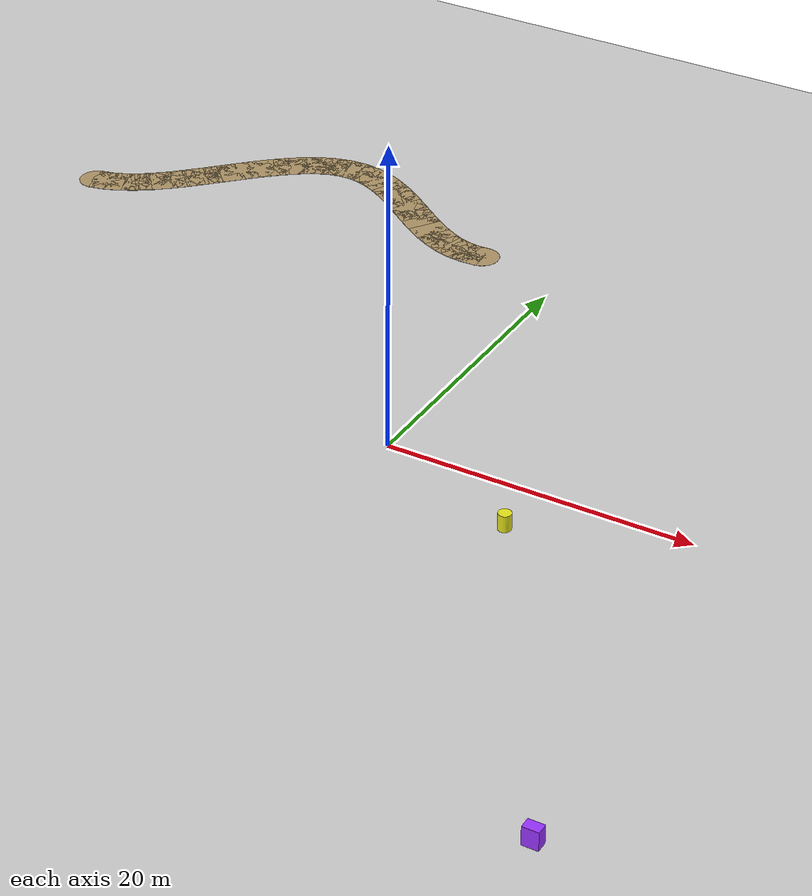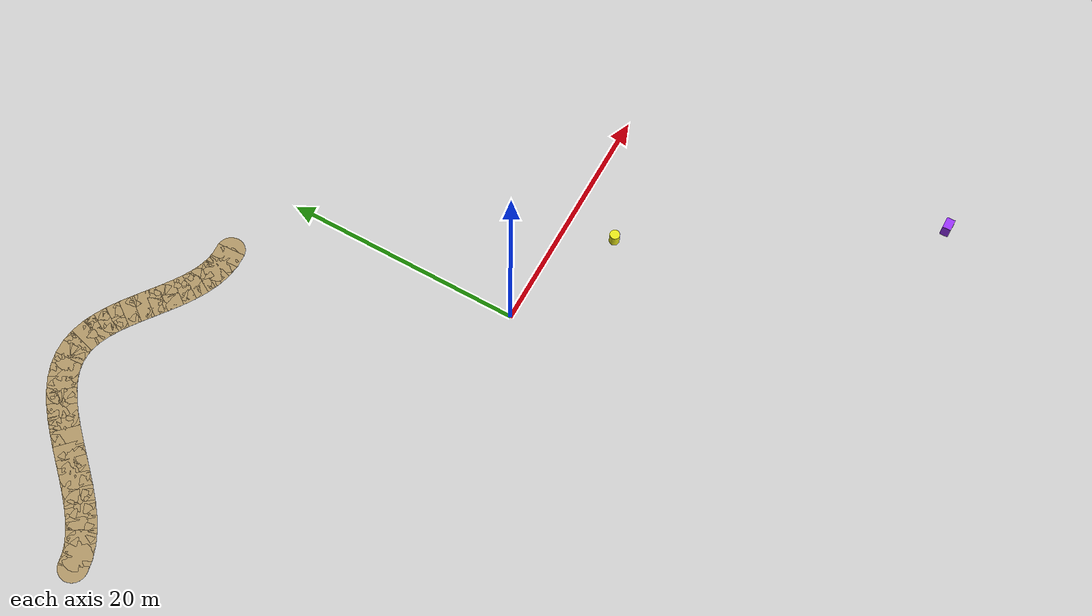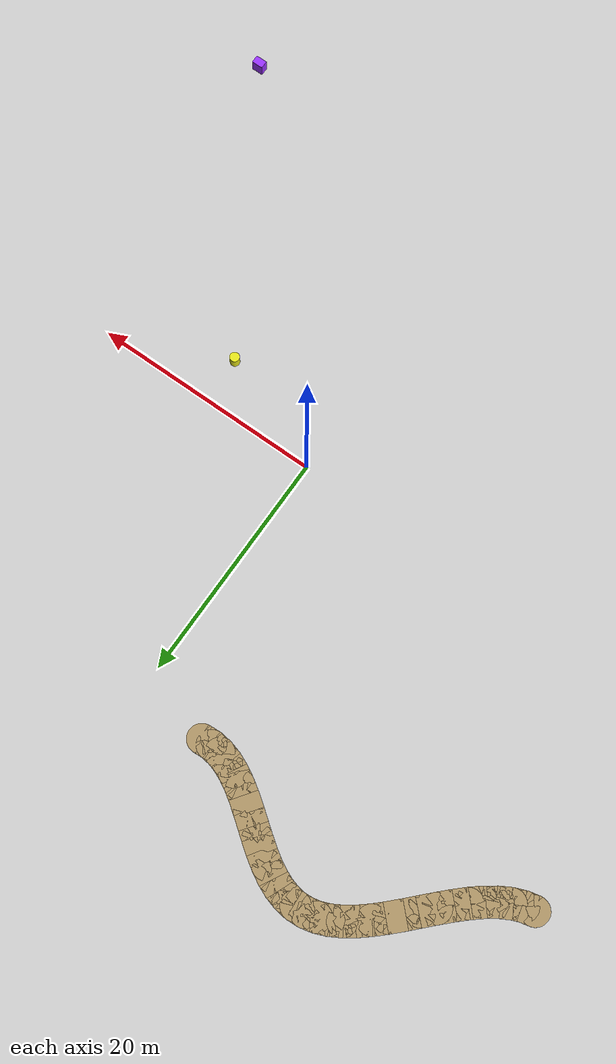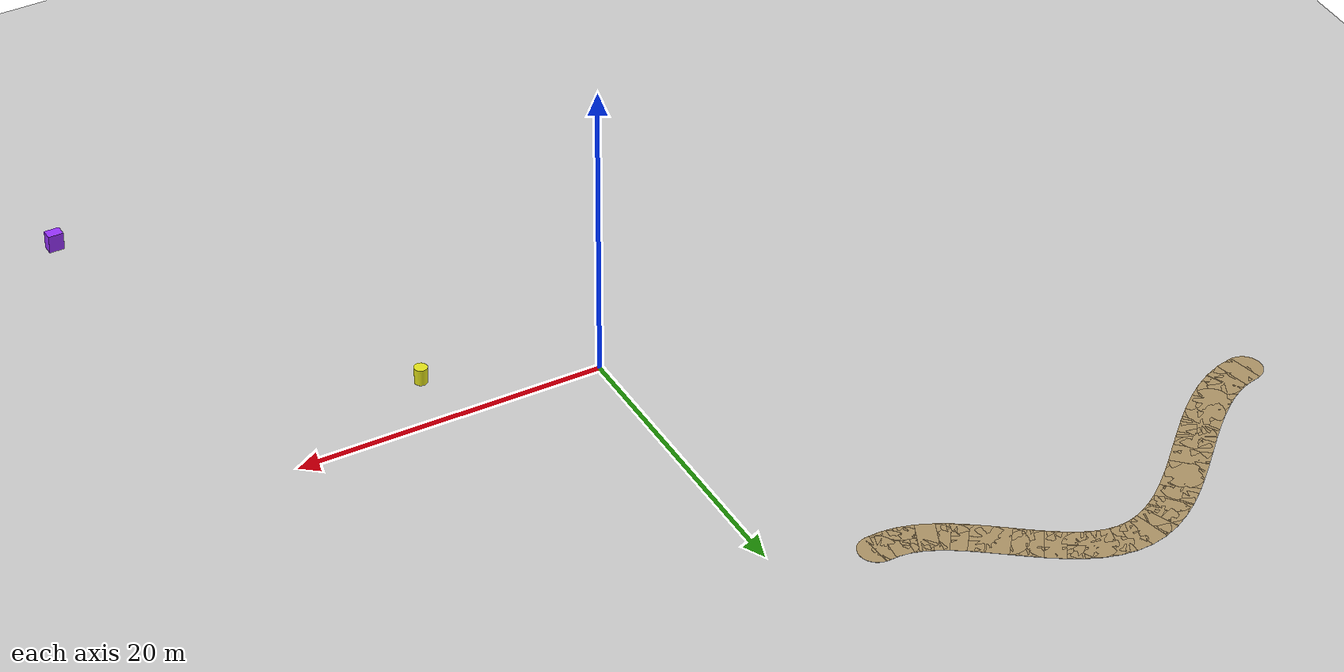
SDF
<sdf version="1.8">
 <world name="semantic_segmentation_world">
  <model name="ground_plane">
   <static>true</static>
   <link name="link">
    <collision name="collision">
     <geometry><plane><normal>0 0 1</normal><size>120 120</size></plane></geometry>
     <surface><friction><ode><mu>100</mu><mu2>50</mu2></ode></friction></surface>
    </collision>
    <visual name="visual">
     <geometry><plane><normal>0 0 1</normal><size>100 100</size></plane></geometry>
     <material>
      <ambient>0.8 0.8 0.8 1</ambient>
      <diffuse>0.8 0.8 0.8 1</diffuse>
      <specular>0.8 0.8 0.8 1</specular>
     </material>
    </visual>
   </link>
  </model>
  <model name="dynamic_obstacle_3">
   <static>true</static>
   <pose>24 -27 0.6 0 0 0</pose>
   <link name="body">
    <inertial><mass>1</mass><inertia><ixx>0.12</ixx><iyy>0.12</iyy><izz>0.12</izz></inertia></inertial>
    <velocity_decay><linear>0.4</linear><angular>0.8</angular></velocity_decay>
    <collision name="collision">
     <geometry><box><size>1.0 0.7 1.2</size></box></geometry>
     <surface><friction><ode><mu>0.2</mu><mu2>0.2</mu2></ode></friction></surface>
    </collision>
    <visual name="visual">
     <geometry><box><size>1.0 0.7 1.2</size></box></geometry>
     <material><ambient>0.6 0.2 1 1</ambient><diffuse>0.6 0.2 1 1</diffuse></material>
    </visual>
   </link>
   <plugin filename="ignition-gazebo-label-system" name="ignition::gazebo::systems::Label">
    <label>6</label>
   </plugin>
   <plugin filename="libssmi_periodic_motion_system.so" name="semantic_segmentation_husky::PeriodicMotionSystem">
    <offset>10 10 0</offset>
    <period>45</period>
    <phase>11.25</phase>
   </plugin>
  </model>
  <model name="dynamic_obstacle_8">
   <static>true</static>
   <pose>10 -4 0.55 0 0 -1.5708</pose>
   <link name="body">
    <inertial><mass>1</mass><inertia><ixx>0.1</ixx><iyy>0.1</iyy><izz>0.1</izz></inertia></inertial>
    <velocity_decay><linear>0.4</linear><angular>0.8</angular></velocity_decay>
    <collision name="collision">
     <geometry><cylinder><radius>0.42</radius><length>1.1</length></cylinder></geometry>
     <surface><friction><ode><mu>0.2</mu><mu2>0.2</mu2></ode></friction></surface>
    </collision>
    <visual name="visual">
     <geometry><cylinder><radius>0.42</radius><length>1.1</length></cylinder></geometry>
     <material><ambient>0.9 0.9 0.1 1</ambient><diffuse>0.9 0.9 0.1 1</diffuse></material>
    </visual>
   </link>
   <plugin filename="ignition-gazebo-label-system" name="ignition::gazebo::systems::Label">
    <label>5</label>
   </plugin>
   <plugin filename="libssmi_periodic_motion_system.so" name="semantic_segmentation_husky::PeriodicMotionSystem">
    <offset>0 -12 0</offset>
    <period>36</period>
    <phase>9</phase>
   </plugin>
  </model>
  <model name="curved_park_path">
   <static>true</static>
   <link name="path_visuals">
    <visual name="path_segment_00">
     <pose>-33.5625 18.6009 0.022 0 0 0.2267292</pose>
     <geometry><box><size>1.1780 2.400 0.012</size></box></geometry>
     <material>
      <ambient>0.46 0.39 0.27 1</ambient>
      <diffuse>0.68 0.58 0.40 1</diffuse>
      <specular>0.01 0.01 0.01 1</specular>
     </material>
    </visual>
    <visual name="path_segment_01">
     <pose>-32.6875 18.8782 0.022 0 0 0.3830879</pose>
     <geometry><box><size>1.2234 2.400 0.012</size></box></geometry>
     <material>
      <ambient>0.46 0.39 0.27 1</ambient>
      <diffuse>0.68 0.58 0.40 1</diffuse>
      <specular>0.01 0.01 0.01 1</specular>
     </material>
    </visual>
    <visual name="path_segment_02">
     <pose>-31.8125 19.3018 0.022 0 0 0.5145158</pose>
     <geometry><box><size>1.2851 2.400 0.012</size></box></geometry>
     <material>
      <ambient>0.46 0.39 0.27 1</ambient>
      <diffuse>0.68 0.58 0.40 1</diffuse>
      <specular>0.01 0.01 0.01 1</specular>
     </material>
    </visual>
    <visual name="path_segment_03">
     <pose>-30.9375 19.8603 0.022 0 0 0.6183181</pose>
     <geometry><box><size>1.3538 2.400 0.012</size></box></geometry>
     <material>
      <ambient>0.46 0.39 0.27 1</ambient>
      <diffuse>0.68 0.58 0.40 1</diffuse>
      <specular>0.01 0.01 0.01 1</specular>
     </material>
    </visual>
    <visual name="path_segment_04">
     <pose>-30.0625 20.5371 0.022 0 0 0.6960719</pose>
     <geometry><box><size>1.4203 2.400 0.012</size></box></geometry>
     <material>
      <ambient>0.46 0.39 0.27 1</ambient>
      <diffuse>0.68 0.58 0.40 1</diffuse>
      <specular>0.01 0.01 0.01 1</specular>
     </material>
    </visual>
    <visual name="path_segment_05">
     <pose>-29.1875 21.3110 0.022 0 0 0.7508561</pose>
     <geometry><box><size>1.4768 2.400 0.012</size></box></geometry>
     <material>
      <ambient>0.46 0.39 0.27 1</ambient>
      <diffuse>0.68 0.58 0.40 1</diffuse>
      <specular>0.01 0.01 0.01 1</specular>
     </material>
    </visual>
    <visual name="path_segment_06">
     <pose>-28.3125 22.1570 0.022 0 0 0.7856109</pose>
     <geometry><box><size>1.5177 2.400 0.012</size></box></geometry>
     <material>
      <ambient>0.46 0.39 0.27 1</ambient>
      <diffuse>0.68 0.58 0.40 1</diffuse>
      <specular>0.01 0.01 0.01 1</specular>
     </material>
    </visual>
    <visual name="path_segment_07">
     <pose>-27.4375 23.0473 0.022 0 0 0.8024500</pose>
     <geometry><box><size>1.5391 2.400 0.012</size></box></geometry>
     <material>
      <ambient>0.46 0.39 0.27 1</ambient>
      <diffuse>0.68 0.58 0.40 1</diffuse>
      <specular>0.01 0.01 0.01 1</specular>
     </material>
    </visual>
    <visual name="path_segment_08">
     <pose>-26.5625 23.9527 0.022 0 0 0.8024500</pose>
     <geometry><box><size>1.5391 2.400 0.012</size></box></geometry>
     <material>
      <ambient>0.46 0.39 0.27 1</ambient>
      <diffuse>0.68 0.58 0.40 1</diffuse>
      <specular>0.01 0.01 0.01 1</specular>
     </material>
    </visual>
    <visual name="path_segment_09">
     <pose>-25.6875 24.8430 0.022 0 0 0.7856109</pose>
     <geometry><box><size>1.5177 2.400 0.012</size></box></geometry>
     <material>
      <ambient>0.46 0.39 0.27 1</ambient>
      <diffuse>0.68 0.58 0.40 1</diffuse>
      <specular>0.01 0.01 0.01 1</specular>
     </material>
    </visual>
    <visual name="path_segment_10">
     <pose>-24.8125 25.6890 0.022 0 0 0.7508561</pose>
     <geometry><box><size>1.4768 2.400 0.012</size></box></geometry>
     <material>
      <ambient>0.46 0.39 0.27 1</ambient>
      <diffuse>0.68 0.58 0.40 1</diffuse>
      <specular>0.01 0.01 0.01 1</specular>
     </material>
    </visual>
    <visual name="path_segment_11">
     <pose>-23.9375 26.4629 0.022 0 0 0.6960719</pose>
     <geometry><box><size>1.4203 2.400 0.012</size></box></geometry>
     <material>
      <ambient>0.46 0.39 0.27 1</ambient>
      <diffuse>0.68 0.58 0.40 1</diffuse>
      <specular>0.01 0.01 0.01 1</specular>
     </material>
    </visual>
    <visual name="path_segment_12">
     <pose>-23.0625 27.1397 0.022 0 0 0.6183181</pose>
     <geometry><box><size>1.3538 2.400 0.012</size></box></geometry>
     <material>
      <ambient>0.46 0.39 0.27 1</ambient>
      <diffuse>0.68 0.58 0.40 1</diffuse>
      <specular>0.01 0.01 0.01 1</specular>
     </material>
    </visual>
    <visual name="path_segment_13">
     <pose>-22.1875 27.6982 0.022 0 0 0.5145158</pose>
     <geometry><box><size>1.2851 2.400 0.012</size></box></geometry>
     <material>
      <ambient>0.46 0.39 0.27 1</ambient>
      <diffuse>0.68 0.58 0.40 1</diffuse>
      <specular>0.01 0.01 0.01 1</specular>
     </material>
    </visual>
    <visual name="path_segment_14">
     <pose>-21.3125 28.1218 0.022 0 0 0.3830879</pose>
     <geometry><box><size>1.2234 2.400 0.012</size></box></geometry>
     <material>
      <ambient>0.46 0.39 0.27 1</ambient>
      <diffuse>0.68 0.58 0.40 1</diffuse>
      <specular>0.01 0.01 0.01 1</specular>
     </material>
    </visual>
    <visual name="path_segment_15">
     <pose>-20.4375 28.3991 0.022 0 0 0.2267292</pose>
     <geometry><box><size>1.1780 2.400 0.012</size></box></geometry>
     <material>
      <ambient>0.46 0.39 0.27 1</ambient>
      <diffuse>0.68 0.58 0.40 1</diffuse>
      <specular>0.01 0.01 0.01 1</specular>
     </material>
    </visual>
    <visual name="path_segment_16">
     <pose>-19.5625 28.5241 0.022 0 0 0.0549630</pose>
     <geometry><box><size>1.1563 2.400 0.012</size></box></geometry>
     <material>
      <ambient>0.46 0.39 0.27 1</ambient>
      <diffuse>0.68 0.58 0.40 1</diffuse>
      <specular>0.01 0.01 0.01 1</specular>
     </material>
    </visual>
    <visual name="path_segment_17">
     <pose>-18.6875 28.4968 0.022 0 0 -0.1167501</pose>
     <geometry><box><size>1.1610 2.400 0.012</size></box></geometry>
     <material>
      <ambient>0.46 0.39 0.27 1</ambient>
      <diffuse>0.68 0.58 0.40 1</diffuse>
      <specular>0.01 0.01 0.01 1</specular>
     </material>
    </visual>
    <visual name="path_segment_18">
     <pose>-17.8125 28.3232 0.022 0 0 -0.2726268</pose>
     <geometry><box><size>1.1886 2.400 0.012</size></box></geometry>
     <material>
      <ambient>0.46 0.39 0.27 1</ambient>
      <diffuse>0.68 0.58 0.40 1</diffuse>
      <specular>0.01 0.01 0.01 1</specular>
     </material>
    </visual>
    <visual name="path_segment_19">
     <pose>-16.9375 28.0147 0.022 0 0 -0.4024284</pose>
     <geometry><box><size>1.2310 2.400 0.012</size></box></geometry>
     <material>
      <ambient>0.46 0.39 0.27 1</ambient>
      <diffuse>0.68 0.58 0.40 1</diffuse>
      <specular>0.01 0.01 0.01 1</specular>
     </material>
    </visual>
    <visual name="path_segment_20">
     <pose>-16.0625 27.5879 0.022 0 0 -0.5027521</pose>
     <geometry><box><size>1.2786 2.400 0.012</size></box></geometry>
     <material>
      <ambient>0.46 0.39 0.27 1</ambient>
      <diffuse>0.68 0.58 0.40 1</diffuse>
      <specular>0.01 0.01 0.01 1</specular>
     </material>
    </visual>
    <visual name="path_segment_21">
     <pose>-15.1875 27.0640 0.022 0 0 -0.5746034</pose>
     <geometry><box><size>1.3224 2.400 0.012</size></box></geometry>
     <material>
      <ambient>0.46 0.39 0.27 1</ambient>
      <diffuse>0.68 0.58 0.40 1</diffuse>
      <specular>0.01 0.01 0.01 1</specular>
     </material>
    </visual>
    <visual name="path_segment_22">
     <pose>-14.3125 26.4680 0.022 0 0 -0.6205313</pose>
     <geometry><box><size>1.3555 2.400 0.012</size></box></geometry>
     <material>
      <ambient>0.46 0.39 0.27 1</ambient>
      <diffuse>0.68 0.58 0.40 1</diffuse>
      <specular>0.01 0.01 0.01 1</specular>
     </material>
    </visual>
    <visual name="path_segment_23">
     <pose>-13.4375 25.8277 0.022 0 0 -0.6428508</pose>
     <geometry><box><size>1.3732 2.400 0.012</size></box></geometry>
     <material>
      <ambient>0.46 0.39 0.27 1</ambient>
      <diffuse>0.68 0.58 0.40 1</diffuse>
      <specular>0.01 0.01 0.01 1</specular>
     </material>
    </visual>
    <visual name="path_segment_24">
     <pose>-12.5625 25.1723 0.022 0 0 -0.6428508</pose>
     <geometry><box><size>1.3732 2.400 0.012</size></box></geometry>
     <material>
      <ambient>0.46 0.39 0.27 1</ambient>
      <diffuse>0.68 0.58 0.40 1</diffuse>
      <specular>0.01 0.01 0.01 1</specular>
     </material>
    </visual>
    <visual name="path_segment_25">
     <pose>-11.6875 24.5320 0.022 0 0 -0.6205313</pose>
     <geometry><box><size>1.3555 2.400 0.012</size></box></geometry>
     <material>
      <ambient>0.46 0.39 0.27 1</ambient>
      <diffuse>0.68 0.58 0.40 1</diffuse>
      <specular>0.01 0.01 0.01 1</specular>
     </material>
    </visual>
    <visual name="path_segment_26">
     <pose>-10.8125 23.9360 0.022 0 0 -0.5746034</pose>
     <geometry><box><size>1.3224 2.400 0.012</size></box></geometry>
     <material>
      <ambient>0.46 0.39 0.27 1</ambient>
      <diffuse>0.68 0.58 0.40 1</diffuse>
      <specular>0.01 0.01 0.01 1</specular>
     </material>
    </visual>
    <visual name="path_segment_27">
     <pose>-9.9375 23.4121 0.022 0 0 -0.5027521</pose>
     <geometry><box><size>1.2786 2.400 0.012</size></box></geometry>
     <material>
      <ambient>0.46 0.39 0.27 1</ambient>
      <diffuse>0.68 0.58 0.40 1</diffuse>
      <specular>0.01 0.01 0.01 1</specular>
     </material>
    </visual>
    <visual name="path_segment_28">
     <pose>-9.0625 22.9853 0.022 0 0 -0.4024284</pose>
     <geometry><box><size>1.2310 2.400 0.012</size></box></geometry>
     <material>
      <ambient>0.46 0.39 0.27 1</ambient>
      <diffuse>0.68 0.58 0.40 1</diffuse>
      <specular>0.01 0.01 0.01 1</specular>
     </material>
    </visual>
    <visual name="path_segment_29">
     <pose>-8.1875 22.6768 0.022 0 0 -0.2726268</pose>
     <geometry><box><size>1.1886 2.400 0.012</size></box></geometry>
     <material>
      <ambient>0.46 0.39 0.27 1</ambient>
      <diffuse>0.68 0.58 0.40 1</diffuse>
      <specular>0.01 0.01 0.01 1</specular>
     </material>
    </visual>
    <visual name="path_segment_30">
     <pose>-7.3125 22.5032 0.022 0 0 -0.1167501</pose>
     <geometry><box><size>1.1610 2.400 0.012</size></box></geometry>
     <material>
      <ambient>0.46 0.39 0.27 1</ambient>
      <diffuse>0.68 0.58 0.40 1</diffuse>
      <specular>0.01 0.01 0.01 1</specular>
     </material>
    </visual>
    <visual name="path_segment_31">
     <pose>-6.4375 22.4759 0.022 0 0 0.0549630</pose>
     <geometry><box><size>1.1563 2.400 0.012</size></box></geometry>
     <material>
      <ambient>0.46 0.39 0.27 1</ambient>
      <diffuse>0.68 0.58 0.40 1</diffuse>
      <specular>0.01 0.01 0.01 1</specular>
     </material>
    </visual>
    <visual name="path_joint_00">
     <pose>-34.0000 18.5000 0.022 0 0 0</pose>
     <geometry><cylinder><radius>1.200</radius><length>0.012</length></cylinder></geometry>
     <material>
      <ambient>0.46 0.39 0.27 1</ambient>
      <diffuse>0.68 0.58 0.40 1</diffuse>
      <specular>0.01 0.01 0.01 1</specular>
     </material>
    </visual>
    <visual name="path_joint_01">
     <pose>-33.1250 18.7019 0.022 0 0 0</pose>
     <geometry><cylinder><radius>1.200</radius><length>0.012</length></cylinder></geometry>
     <material>
      <ambient>0.46 0.39 0.27 1</ambient>
      <diffuse>0.68 0.58 0.40 1</diffuse>
      <specular>0.01 0.01 0.01 1</specular>
     </material>
    </visual>
    <visual name="path_joint_02">
     <pose>-32.2500 19.0545 0.022 0 0 0</pose>
     <geometry><cylinder><radius>1.200</radius><length>0.012</length></cylinder></geometry>
     <material>
      <ambient>0.46 0.39 0.27 1</ambient>
      <diffuse>0.68 0.58 0.40 1</diffuse>
      <specular>0.01 0.01 0.01 1</specular>
     </material>
    </visual>
    <visual name="path_joint_03">
     <pose>-31.3750 19.5491 0.022 0 0 0</pose>
     <geometry><cylinder><radius>1.200</radius><length>0.012</length></cylinder></geometry>
     <material>
      <ambient>0.46 0.39 0.27 1</ambient>
      <diffuse>0.68 0.58 0.40 1</diffuse>
      <specular>0.01 0.01 0.01 1</specular>
     </material>
    </visual>
    <visual name="path_joint_04">
     <pose>-30.5000 20.1716 0.022 0 0 0</pose>
     <geometry><cylinder><radius>1.200</radius><length>0.012</length></cylinder></geometry>
     <material>
      <ambient>0.46 0.39 0.27 1</ambient>
      <diffuse>0.68 0.58 0.40 1</diffuse>
      <specular>0.01 0.01 0.01 1</specular>
     </material>
    </visual>
    <visual name="path_joint_05">
     <pose>-29.6250 20.9027 0.022 0 0 0</pose>
     <geometry><cylinder><radius>1.200</radius><length>0.012</length></cylinder></geometry>
     <material>
      <ambient>0.46 0.39 0.27 1</ambient>
      <diffuse>0.68 0.58 0.40 1</diffuse>
      <specular>0.01 0.01 0.01 1</specular>
     </material>
    </visual>
    <visual name="path_joint_06">
     <pose>-28.7500 21.7193 0.022 0 0 0</pose>
     <geometry><cylinder><radius>1.200</radius><length>0.012</length></cylinder></geometry>
     <material>
      <ambient>0.46 0.39 0.27 1</ambient>
      <diffuse>0.68 0.58 0.40 1</diffuse>
      <specular>0.01 0.01 0.01 1</specular>
     </material>
    </visual>
    <visual name="path_joint_07">
     <pose>-27.8750 22.5946 0.022 0 0 0</pose>
     <geometry><cylinder><radius>1.200</radius><length>0.012</length></cylinder></geometry>
     <material>
      <ambient>0.46 0.39 0.27 1</ambient>
      <diffuse>0.68 0.58 0.40 1</diffuse>
      <specular>0.01 0.01 0.01 1</specular>
     </material>
    </visual>
    <visual name="path_joint_08">
     <pose>-27.0000 23.5000 0.022 0 0 0</pose>
     <geometry><cylinder><radius>1.200</radius><length>0.012</length></cylinder></geometry>
     <material>
      <ambient>0.46 0.39 0.27 1</ambient>
      <diffuse>0.68 0.58 0.40 1</diffuse>
      <specular>0.01 0.01 0.01 1</specular>
     </material>
    </visual>
    <visual name="path_joint_09">
     <pose>-26.1250 24.4054 0.022 0 0 0</pose>
     <geometry><cylinder><radius>1.200</radius><length>0.012</length></cylinder></geometry>
     <material>
      <ambient>0.46 0.39 0.27 1</ambient>
      <diffuse>0.68 0.58 0.40 1</diffuse>
      <specular>0.01 0.01 0.01 1</specular>
     </material>
    </visual>
    <visual name="path_joint_10">
     <pose>-25.2500 25.2807 0.022 0 0 0</pose>
     <geometry><cylinder><radius>1.200</radius><length>0.012</length></cylinder></geometry>
     <material>
      <ambient>0.46 0.39 0.27 1</ambient>
      <diffuse>0.68 0.58 0.40 1</diffuse>
      <specular>0.01 0.01 0.01 1</specular>
     </material>
    </visual>
    <visual name="path_joint_11">
     <pose>-24.3750 26.0973 0.022 0 0 0</pose>
     <geometry><cylinder><radius>1.200</radius><length>0.012</length></cylinder></geometry>
     <material>
      <ambient>0.46 0.39 0.27 1</ambient>
      <diffuse>0.68 0.58 0.40 1</diffuse>
      <specular>0.01 0.01 0.01 1</specular>
     </material>
    </visual>
    <visual name="path_joint_12">
     <pose>-23.5000 26.8284 0.022 0 0 0</pose>
     <geometry><cylinder><radius>1.200</radius><length>0.012</length></cylinder></geometry>
     <material>
      <ambient>0.46 0.39 0.27 1</ambient>
      <diffuse>0.68 0.58 0.40 1</diffuse>
      <specular>0.01 0.01 0.01 1</specular>
     </material>
    </visual>
    <visual name="path_joint_13">
     <pose>-22.6250 27.4509 0.022 0 0 0</pose>
     <geometry><cylinder><radius>1.200</radius><length>0.012</length></cylinder></geometry>
     <material>
      <ambient>0.46 0.39 0.27 1</ambient>
      <diffuse>0.68 0.58 0.40 1</diffuse>
      <specular>0.01 0.01 0.01 1</specular>
     </material>
    </visual>
    <visual name="path_joint_14">
     <pose>-21.7500 27.9455 0.022 0 0 0</pose>
     <geometry><cylinder><radius>1.200</radius><length>0.012</length></cylinder></geometry>
     <material>
      <ambient>0.46 0.39 0.27 1</ambient>
      <diffuse>0.68 0.58 0.40 1</diffuse>
      <specular>0.01 0.01 0.01 1</specular>
     </material>
    </visual>
    <visual name="path_joint_15">
     <pose>-20.8750 28.2981 0.022 0 0 0</pose>
     <geometry><cylinder><radius>1.200</radius><length>0.012</length></cylinder></geometry>
     <material>
      <ambient>0.46 0.39 0.27 1</ambient>
      <diffuse>0.68 0.58 0.40 1</diffuse>
      <specular>0.01 0.01 0.01 1</specular>
     </material>
    </visual>
    <visual name="path_joint_16">
     <pose>-20.0000 28.5000 0.022 0 0 0</pose>
     <geometry><cylinder><radius>1.200</radius><length>0.012</length></cylinder></geometry>
     <material>
      <ambient>0.46 0.39 0.27 1</ambient>
      <diffuse>0.68 0.58 0.40 1</diffuse>
      <specular>0.01 0.01 0.01 1</specular>
     </material>
    </visual>
    <visual name="path_joint_17">
     <pose>-19.1250 28.5481 0.022 0 0 0</pose>
     <geometry><cylinder><radius>1.200</radius><length>0.012</length></cylinder></geometry>
     <material>
      <ambient>0.46 0.39 0.27 1</ambient>
      <diffuse>0.68 0.58 0.40 1</diffuse>
      <specular>0.01 0.01 0.01 1</specular>
     </material>
    </visual>
    <visual name="path_joint_18">
     <pose>-18.2500 28.4455 0.022 0 0 0</pose>
     <geometry><cylinder><radius>1.200</radius><length>0.012</length></cylinder></geometry>
     <material>
      <ambient>0.46 0.39 0.27 1</ambient>
      <diffuse>0.68 0.58 0.40 1</diffuse>
      <specular>0.01 0.01 0.01 1</specular>
     </material>
    </visual>
    <visual name="path_joint_19">
     <pose>-17.3750 28.2009 0.022 0 0 0</pose>
     <geometry><cylinder><radius>1.200</radius><length>0.012</length></cylinder></geometry>
     <material>
      <ambient>0.46 0.39 0.27 1</ambient>
      <diffuse>0.68 0.58 0.40 1</diffuse>
      <specular>0.01 0.01 0.01 1</specular>
     </material>
    </visual>
    <visual name="path_joint_20">
     <pose>-16.5000 27.8284 0.022 0 0 0</pose>
     <geometry><cylinder><radius>1.200</radius><length>0.012</length></cylinder></geometry>
     <material>
      <ambient>0.46 0.39 0.27 1</ambient>
      <diffuse>0.68 0.58 0.40 1</diffuse>
      <specular>0.01 0.01 0.01 1</specular>
     </material>
    </visual>
    <visual name="path_joint_21">
     <pose>-15.6250 27.3473 0.022 0 0 0</pose>
     <geometry><cylinder><radius>1.200</radius><length>0.012</length></cylinder></geometry>
     <material>
      <ambient>0.46 0.39 0.27 1</ambient>
      <diffuse>0.68 0.58 0.40 1</diffuse>
      <specular>0.01 0.01 0.01 1</specular>
     </material>
    </visual>
    <visual name="path_joint_22">
     <pose>-14.7500 26.7807 0.022 0 0 0</pose>
     <geometry><cylinder><radius>1.200</radius><length>0.012</length></cylinder></geometry>
     <material>
      <ambient>0.46 0.39 0.27 1</ambient>
      <diffuse>0.68 0.58 0.40 1</diffuse>
      <specular>0.01 0.01 0.01 1</specular>
     </material>
    </visual>
    <visual name="path_joint_23">
     <pose>-13.8750 26.1554 0.022 0 0 0</pose>
     <geometry><cylinder><radius>1.200</radius><length>0.012</length></cylinder></geometry>
     <material>
      <ambient>0.46 0.39 0.27 1</ambient>
      <diffuse>0.68 0.58 0.40 1</diffuse>
      <specular>0.01 0.01 0.01 1</specular>
     </material>
    </visual>
    <visual name="path_joint_24">
     <pose>-13.0000 25.5000 0.022 0 0 0</pose>
     <geometry><cylinder><radius>1.200</radius><length>0.012</length></cylinder></geometry>
     <material>
      <ambient>0.46 0.39 0.27 1</ambient>
      <diffuse>0.68 0.58 0.40 1</diffuse>
      <specular>0.01 0.01 0.01 1</specular>
     </material>
    </visual>
    <visual name="path_joint_25">
     <pose>-12.1250 24.8446 0.022 0 0 0</pose>
     <geometry><cylinder><radius>1.200</radius><length>0.012</length></cylinder></geometry>
     <material>
      <ambient>0.46 0.39 0.27 1</ambient>
      <diffuse>0.68 0.58 0.40 1</diffuse>
      <specular>0.01 0.01 0.01 1</specular>
     </material>
    </visual>
    <visual name="path_joint_26">
     <pose>-11.2500 24.2193 0.022 0 0 0</pose>
     <geometry><cylinder><radius>1.200</radius><length>0.012</length></cylinder></geometry>
     <material>
      <ambient>0.46 0.39 0.27 1</ambient>
      <diffuse>0.68 0.58 0.40 1</diffuse>
      <specular>0.01 0.01 0.01 1</specular>
     </material>
    </visual>
    <visual name="path_joint_27">
     <pose>-10.3750 23.6527 0.022 0 0 0</pose>
     <geometry><cylinder><radius>1.200</radius><length>0.012</length></cylinder></geometry>
     <material>
      <ambient>0.46 0.39 0.27 1</ambient>
      <diffuse>0.68 0.58 0.40 1</diffuse>
      <specular>0.01 0.01 0.01 1</specular>
     </material>
    </visual>
    <visual name="path_joint_28">
     <pose>-9.5000 23.1716 0.022 0 0 0</pose>
     <geometry><cylinder><radius>1.200</radius><length>0.012</length></cylinder></geometry>
     <material>
      <ambient>0.46 0.39 0.27 1</ambient>
      <diffuse>0.68 0.58 0.40 1</diffuse>
      <specular>0.01 0.01 0.01 1</specular>
     </material>
    </visual>
    <visual name="path_joint_29">
     <pose>-8.6250 22.7991 0.022 0 0 0</pose>
     <geometry><cylinder><radius>1.200</radius><length>0.012</length></cylinder></geometry>
     <material>
      <ambient>0.46 0.39 0.27 1</ambient>
      <diffuse>0.68 0.58 0.40 1</diffuse>
      <specular>0.01 0.01 0.01 1</specular>
     </material>
    </visual>
    <visual name="path_joint_30">
     <pose>-7.7500 22.5545 0.022 0 0 0</pose>
     <geometry><cylinder><radius>1.200</radius><length>0.012</length></cylinder></geometry>
     <material>
      <ambient>0.46 0.39 0.27 1</ambient>
      <diffuse>0.68 0.58 0.40 1</diffuse>
      <specular>0.01 0.01 0.01 1</specular>
     </material>
    </visual>
    <visual name="path_joint_31">
     <pose>-6.8750 22.4519 0.022 0 0 0</pose>
     <geometry><cylinder><radius>1.200</radius><length>0.012</length></cylinder></geometry>
     <material>
      <ambient>0.46 0.39 0.27 1</ambient>
      <diffuse>0.68 0.58 0.40 1</diffuse>
      <specular>0.01 0.01 0.01 1</specular>
     </material>
    </visual>
    <visual name="path_joint_32">
     <pose>-6.0000 22.5000 0.022 0 0 0</pose>
     <geometry><cylinder><radius>1.200</radius><length>0.012</length></cylinder></geometry>
     <material>
      <ambient>0.46 0.39 0.27 1</ambient>
      <diffuse>0.68 0.58 0.40 1</diffuse>
      <specular>0.01 0.01 0.01 1</specular>
     </material>
    </visual>
   </link>
   <plugin filename="ignition-gazebo-label-system" name="ignition::gazebo::systems::Label">
    <label>0</label>
   </plugin>
  </model>
 </world>
</sdf>
